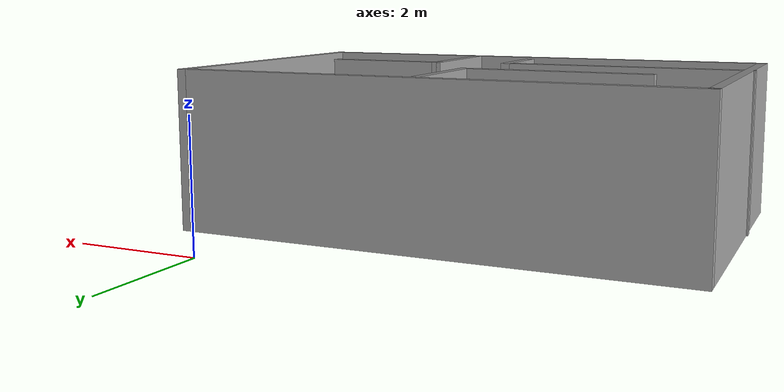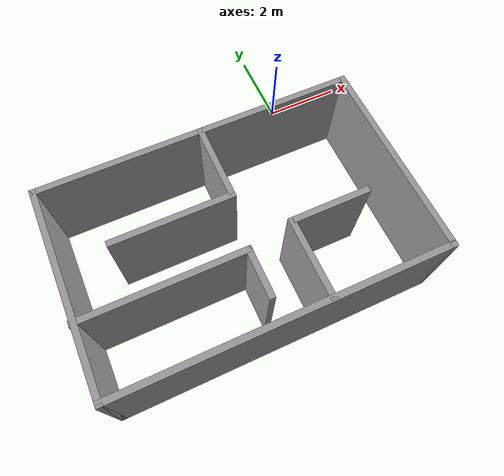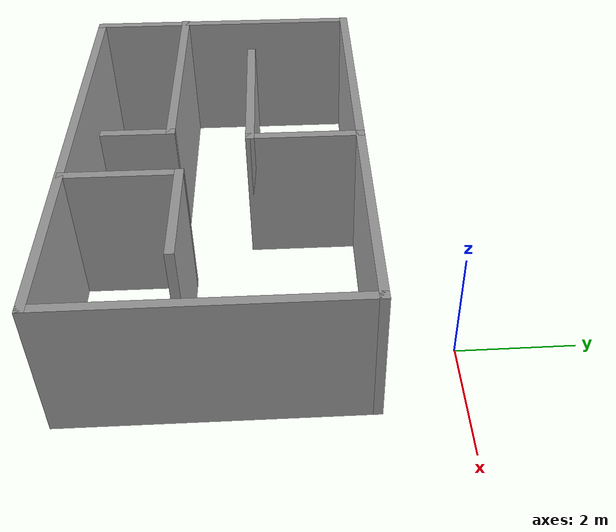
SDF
<?xml version='1.0'?>
<sdf version='1.7'>
  <model name='room'>
    <pose>-2.8167 -3.1475 0 0 -0 0</pose>
    <link name='Wall_0'>
      <collision name='Wall_0_Collision'>
        <geometry>
          <box>
            <size>8 0.15 2.5</size>
          </box>
        </geometry>
        <pose>0 0 1.25 0 -0 0</pose>
      </collision>
      <visual name='Wall_0_Visual'>
        <pose>0 0 1.25 0 -0 0</pose>
        <geometry>
          <box>
            <size>8 0.15 2.5</size>
          </box>
        </geometry>
        <material>
          <script>
            <uri>file://media/materials/scripts/gazebo.material</uri>
            <name>Gazebo/Grey</name>
          </script>
          <ambient>1 1 1 1</ambient>
        </material>
        <meta>
          <layer>0</layer>
        </meta>
      </visual>
      <pose>0.0117 1.7775 0 0 -0 3.14159</pose>
    </link>
    <link name='Wall_10'>
      <collision name='Wall_10_Collision'>
        <geometry>
          <box>
            <size>1.25 0.15 2.5</size>
          </box>
        </geometry>
        <pose>0 0 1.25 0 -0 0</pose>
      </collision>
      <visual name='Wall_10_Visual'>
        <pose>0 0 1.25 0 -0 0</pose>
        <geometry>
          <box>
            <size>1.25 0.15 2.5</size>
          </box>
        </geometry>
        <material>
          <script>
            <uri>file://media/materials/scripts/gazebo.material</uri>
            <name>Gazebo/Grey</name>
          </script>
          <ambient>1 1 1 1</ambient>
        </material>
        <meta>
          <layer>0</layer>
        </meta>
      </visual>
      <pose>-0.0867 -1.96003 0 0 -0 -1.5708</pose>
    </link>
    <link name='Wall_12'>
      <collision name='Wall_12_Collision'>
        <geometry>
          <box>
            <size>2 0.15 2.5</size>
          </box>
        </geometry>
        <pose>0 0 1.25 0 -0 0</pose>
      </collision>
      <visual name='Wall_12_Visual'>
        <pose>0 0 1.25 0 -0 0</pose>
        <geometry>
          <box>
            <size>2 0.15 2.5</size>
          </box>
        </geometry>
        <material>
          <script>
            <uri>file://media/materials/scripts/gazebo.material</uri>
            <name>Gazebo/Grey</name>
          </script>
          <ambient>1 1 1 1</ambient>
        </material>
        <meta>
          <layer>0</layer>
        </meta>
      </visual>
      <pose>1.04797 -2.11161 0 0 -0 1.5708</pose>
    </link>
    <link name='Wall_13'>
      <collision name='Wall_13_Collision'>
        <geometry>
          <box>
            <size>2 0.15 2.5</size>
          </box>
        </geometry>
        <pose>0 0 1.25 0 -0 0</pose>
      </collision>
      <visual name='Wall_13_Visual'>
        <pose>0 0 1.25 0 -0 0</pose>
        <geometry>
          <box>
            <size>2 0.15 2.5</size>
          </box>
        </geometry>
        <material>
          <script>
            <uri>file://media/materials/scripts/gazebo.material</uri>
            <name>Gazebo/Grey</name>
          </script>
          <ambient>1 1 1 1</ambient>
        </material>
        <meta>
          <layer>0</layer>
        </meta>
      </visual>
      <pose>1.97297 -1.18661 0 0 -0 0</pose>
    </link>
    <link name='Wall_2'>
      <collision name='Wall_2_Collision'>
        <geometry>
          <box>
            <size>5 0.15 2.5</size>
          </box>
        </geometry>
        <pose>0 0 1.25 0 -0 0</pose>
      </collision>
      <visual name='Wall_2_Visual'>
        <pose>0 0 1.25 0 -0 0</pose>
        <geometry>
          <box>
            <size>5 0.15 2.5</size>
          </box>
        </geometry>
        <material>
          <script>
            <uri>file://media/materials/scripts/gazebo.material</uri>
            <name>Gazebo/Grey</name>
          </script>
          <ambient>1 1 1 1</ambient>
        </material>
        <meta>
          <layer>0</layer>
        </meta>
      </visual>
      <pose>-3.9133 -0.6475 0 0 -0 -1.5708</pose>
    </link>
    <link name='Wall_3'>
      <collision name='Wall_3_Collision'>
        <geometry>
          <box>
            <size>8 0.15 2.5</size>
          </box>
        </geometry>
        <pose>0 0 1.25 0 -0 0</pose>
      </collision>
      <visual name='Wall_3_Visual'>
        <pose>0 0 1.25 0 -0 0</pose>
        <geometry>
          <box>
            <size>8 0.15 2.5</size>
          </box>
        </geometry>
        <material>
          <script>
            <uri>file://media/materials/scripts/gazebo.material</uri>
            <name>Gazebo/Grey</name>
          </script>
          <ambient>1 1 1 1</ambient>
        </material>
        <meta>
          <layer>0</layer>
        </meta>
      </visual>
      <pose>0.0117 -3.0725 0 0 -0 0</pose>
    </link>
    <link name='Wall_4'>
      <collision name='Wall_4_Collision'>
        <geometry>
          <box>
            <size>5 0.15 2.5</size>
          </box>
        </geometry>
        <pose>0 0 1.25 0 -0 0</pose>
      </collision>
      <visual name='Wall_4_Visual'>
        <pose>0 0 1.25 0 -0 0</pose>
        <geometry>
          <box>
            <size>5 0.15 2.5</size>
          </box>
        </geometry>
        <material>
          <script>
            <uri>file://media/materials/scripts/gazebo.material</uri>
            <name>Gazebo/Grey</name>
          </script>
          <ambient>1 1 1 1</ambient>
        </material>
        <meta>
          <layer>0</layer>
        </meta>
      </visual>
      <pose>3.9367 -0.6475 0 0 -0 1.5708</pose>
    </link>
    <link name='Wall_6'>
      <collision name='Wall_6_Collision'>
        <geometry>
          <box>
            <size>2 0.15 2.5</size>
          </box>
        </geometry>
        <pose>0 0 1.25 0 -0 0</pose>
      </collision>
      <visual name='Wall_6_Visual'>
        <pose>0 0 1.25 0 -0 0</pose>
        <geometry>
          <box>
            <size>2 0.15 2.5</size>
          </box>
        </geometry>
        <material>
          <script>
            <uri>file://media/materials/scripts/gazebo.material</uri>
            <name>Gazebo/Grey</name>
          </script>
          <ambient>1 1 1 1</ambient>
        </material>
        <meta>
          <layer>0</layer>
        </meta>
      </visual>
      <pose>0.120994 0.848161 0 0 -0 -1.5708</pose>
    </link>
    <link name='Wall_7'>
      <collision name='Wall_7_Collision'>
        <geometry>
          <box>
            <size>3 0.15 2.5</size>
          </box>
        </geometry>
        <pose>0 0 1.25 0 -0 0</pose>
      </collision>
      <visual name='Wall_7_Visual'>
        <pose>0 0 1.25 0 -0 0</pose>
        <geometry>
          <box>
            <size>3 0.15 2.5</size>
          </box>
        </geometry>
        <material>
          <script>
            <uri>file://media/materials/scripts/gazebo.material</uri>
            <name>Gazebo/Grey</name>
          </script>
          <ambient>1 1 1 1</ambient>
        </material>
        <meta>
          <layer>0</layer>
        </meta>
      </visual>
      <pose>-1.30401 -0.076839 0 0 -0 3.14159</pose>
    </link>
    <link name='Wall_9'>
      <collision name='Wall_9_Collision'>
        <geometry>
          <box>
            <size>4 0.15 2.5</size>
          </box>
        </geometry>
        <pose>0 0 1.25 0 -0 0</pose>
      </collision>
      <visual name='Wall_9_Visual'>
        <pose>0 0 1.25 0 -0 0</pose>
        <geometry>
          <box>
            <size>4 0.15 2.5</size>
          </box>
        </geometry>
        <material>
          <script>
            <uri>file://media/materials/scripts/gazebo.material</uri>
            <name>Gazebo/Grey</name>
          </script>
          <ambient>1 1 1 1</ambient>
        </material>
        <meta>
          <layer>0</layer>
        </meta>
      </visual>
      <pose>-2.0117 -1.41003 0 0 -0 0</pose>
    </link>
    <static>1</static>
  </model>
</sdf>
